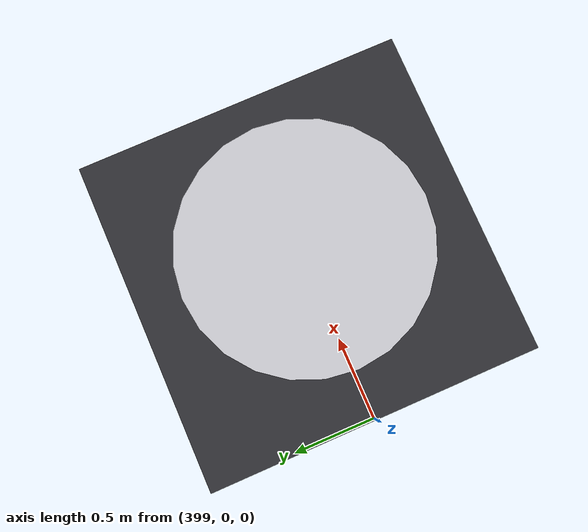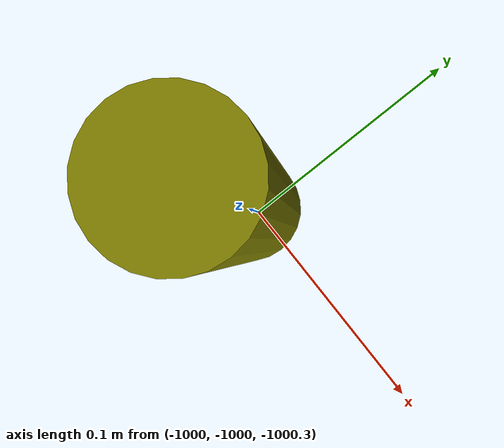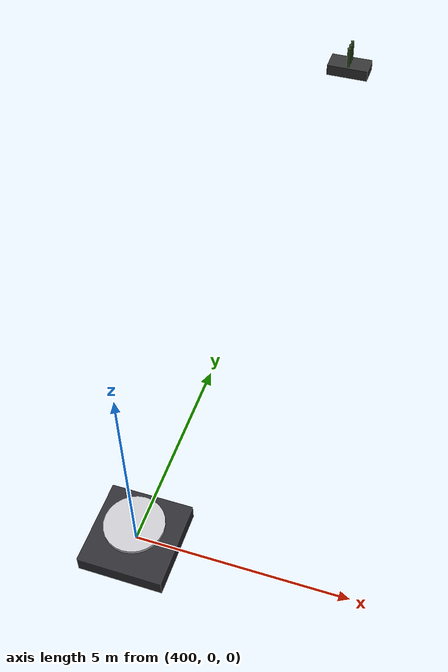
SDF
<sdf version="1.7">
 <world name="runway">
  <physics name="1ms" type="ignore">
   <max_step_size>0.001</max_step_size>
   <real_time_factor>1</real_time_factor>
  </physics>
  <plugin filename="gz-sim-physics-system" name="gz::sim::systems::Physics"/>
  <plugin filename="gz-sim-user-commands-system" name="gz::sim::systems::UserCommands"/>
  <plugin filename="gz-sim-scene-broadcaster-system" name="gz::sim::systems::SceneBroadcaster"/>
  <plugin filename="gz-sim-imu-system" name="gz::sim::systems::Imu"/>
  <plugin filename="gz-sim-navsat-system" name="gz::sim::systems::NavSat"/>
  <plugin filename="gz-sim-sensors-system" name="gz::sim::systems::Sensors">
   <render_engine>ogre2</render_engine>
  </plugin>
  <scene><ambient>1.0 1.0 1.0</ambient><background>0.8 0.8 0.8</background></scene>
  <spherical_coordinates>
   <latitude_deg>-35.363262</latitude_deg>
   <longitude_deg>149.165237</longitude_deg>
   <elevation>584</elevation>
   <heading_deg>0</heading_deg>
   <surface_model>EARTH_WGS84</surface_model>
  </spherical_coordinates>
  <light type="directional" name="sun">
   <pose>0 0 10 0 0 0</pose>
   <diffuse>0.8 0.8 0.8 1</diffuse>
   <specular>0.8 0.8 0.8 1</specular>
   <attenuation>
    <range>1000</range>
    <constant>0.9</constant>
    <linear>0.01</linear>
    <quadratic>0.001</quadratic>
   </attenuation>
   <direction>-0.5 0.1 -0.9</direction>
  </light>
  <model name="axes">
   <static>1</static>
   <link name="link">
    <visual name="r">
     <cast_shadows>0</cast_shadows>
     <pose>5 0 0.1 0 0 0</pose>
     <geometry><box><size>10 0.01 0.01</size></box></geometry>
     <material>
      <ambient>1 0 0 1</ambient>
      <diffuse>1 0 0 1</diffuse>
      <emissive>1 0 0 1</emissive>
      <specular>0.5 0.5 0.5 1</specular>
     </material>
    </visual>
    <visual name="g">
     <cast_shadows>0</cast_shadows>
     <pose>0 5 0.1 0 0 0</pose>
     <geometry><box><size>0.01 10 0.01</size></box></geometry>
     <material>
      <ambient>0 1 0 1</ambient>
      <diffuse>0 1 0 1</diffuse>
      <emissive>0 1 0 1</emissive>
      <specular>0.5 0.5 0.5 1</specular>
     </material>
    </visual>
    <visual name="b">
     <cast_shadows>0</cast_shadows>
     <pose>0 0 5.1 0 0 0</pose>
     <geometry><box><size>0.01 0.01 10</size></box></geometry>
     <material>
      <ambient>0 0 1 1</ambient>
      <diffuse>0 0 1 1</diffuse>
      <emissive>0 0 1 1</emissive>
      <specular>0.5 0.5 0.5 1</specular>
     </material>
    </visual>
   </link>
  </model>
  <include><name>radar_simple</name><pose>400 0 0 0 0 0</pose><uri>model://radar_simple</uri></include>
  <include><name>sam_launcher</name><pose>400 20 0 0 0 0</pose><uri>model://sam_launcher</uri></include>
  <include><name>missile_template</name><pose>-1000 -1000 -1000 0 0 0</pose><uri>model://missile</uri></include>
 </world>
</sdf>

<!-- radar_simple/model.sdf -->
<sdf version='1.6'>
  <model name='radar_simple'>
    <static>true</static>
    <link name='link'>
      <pose>0 0 0 0 0 0</pose>
      <!-- Base platform -->
      <visual name='platform'>
        <geometry>
          <box>
            <size>2 2 0.4</size>
          </box>
        </geometry>
        <material>
          <!-- dark metallic base -->
          <ambient>0.12 0.12 0.12 1</ambient>
          <diffuse>0.18 0.18 0.20 1</diffuse>
          <specular>0.3 0.3 0.32 1</specular>
        </material>
      </visual>

      <!-- Radar dish -->
      <visual name='dish'>
        <pose>0 0 0.55 0 0 0</pose>
        <geometry>
          <cylinder>
            <radius>0.7</radius>
            <length>0.08</length>
          </cylinder>
        </geometry>
        <material>
          <!-- metallic dish (light grey) -->
          <ambient>0.6 0.6 0.62 1</ambient>
          <diffuse>0.78 0.78 0.80 1</diffuse>
          <specular>0.9 0.9 0.9 1</specular>
        </material>
      </visual>

      <!-- Radar mast -->
      <visual name='mast'>
        <pose>0 0 0.25 0 0 0</pose>
        <geometry>
          <cylinder>
            <radius>0.08</radius>
            <length>0.5</length>
          </cylinder>
        </geometry>
        <material>
          <!-- mast color darker grey -->
          <ambient>0.25 0.25 0.26 1</ambient>
          <diffuse>0.3 0.3 0.32 1</diffuse>
        </material>
      </visual>

    </link>
  </model>
</sdf>

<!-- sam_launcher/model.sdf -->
<sdf version='1.6'>
  <model name='sam_launcher'>
    <static>true</static>
    <link name='base'>
      <pose>0 0 0 0 0 0</pose>
      <!-- Base -->
      <visual name='base_box'>
        <geometry>
          <box>
            <size>1.5 0.8 0.4</size>
          </box>
        </geometry>
        <material>
          <!-- base dark grey -->
          <ambient>0.12 0.12 0.12 1</ambient>
          <diffuse>0.2 0.2 0.2 1</diffuse>
          <specular>0.25 0.25 0.25 1</specular>
        </material>
      </visual>

      <!-- Launcher rail assembly: three missiles side-by-side -->
      <visual name='missile_1'>
        <pose>0.0 -0.25 0.35 0 0 0</pose>
        <geometry>
          <cylinder>
            <radius>0.06</radius>
            <length>1.2</length>
          </cylinder>
        </geometry>
        <material>
          <!-- missile olive/green -->
          <ambient>0.12 0.18 0.08 1</ambient>
          <diffuse>0.18 0.28 0.12 1</diffuse>
          <specular>0.05 0.05 0.05 1</specular>
        </material>
      </visual>

      <visual name='missile_2'>
        <pose>0.0 0.0 0.35 0 0 0</pose>
        <geometry>
          <cylinder>
            <radius>0.06</radius>
            <length>1.2</length>
          </cylinder>
        </geometry>
        <material>
          <ambient>0.12 0.18 0.08 1</ambient>
          <diffuse>0.18 0.28 0.12 1</diffuse>
          <specular>0.05 0.05 0.05 1</specular>
        </material>
      </visual>

      <visual name='missile_3'>
        <pose>0.0 0.25 0.35 0 0 0</pose>
        <geometry>
          <cylinder>
            <radius>0.06</radius>
            <length>1.2</length>
          </cylinder>
        </geometry>
        <material>
          <ambient>0.12 0.18 0.08 1</ambient>
          <diffuse>0.18 0.28 0.12 1</diffuse>
          <specular>0.05 0.05 0.05 1</specular>
        </material>
      </visual>

    </link>
  </model>
</sdf>

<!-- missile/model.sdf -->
<sdf version="1.9">
  <model name="missile">
    <static>false</static>
    <link name="body">
      <inertial>
        <mass>0.5</mass>
        <inertia>
          <ixx>0.001</ixx>
          <ixy>0</ixy>
          <ixz>0</ixz>
          <iyy>0.01</iyy>
          <iyz>0</iyz>
          <izz>0.01</izz>
        </inertia>
      </inertial>

      <collision name="missile_collision">
        <geometry>
          <cylinder>
            <radius>0.02</radius>
            <length>0.4</length>
          </cylinder>
        </geometry>
      </collision>

      <visual name="missile_visual">
        <geometry>
          <cylinder>
            <radius>0.02</radius>
            <length>0.4</length>
          </cylinder>
        </geometry>
        <material>
          <ambient>0.3 0.3 0.0 1</ambient>
          <diffuse>0.5 0.5 0.0 1</diffuse>
          <specular>0.6 0.6 0.2 1</specular>
        </material>
      </visual>

      <!-- Flame/exhaust visual at tail -->
      <visual name="exhaust_visual">
        <pose>0 0 -0.25 0 0 0</pose>
        <geometry>
          <cylinder>
            <radius>0.015</radius>
            <length>0.1</length>
          </cylinder>
        </geometry>
        <material>
          <ambient>1.0 0.5 0.0 0.8</ambient>
          <diffuse>1.0 0.6 0.0 0.8</diffuse>
          <specular>0.8 0.4 0.0 0.8</specular>
        </material>
      </visual>
    </link>
  </model>
</sdf>
